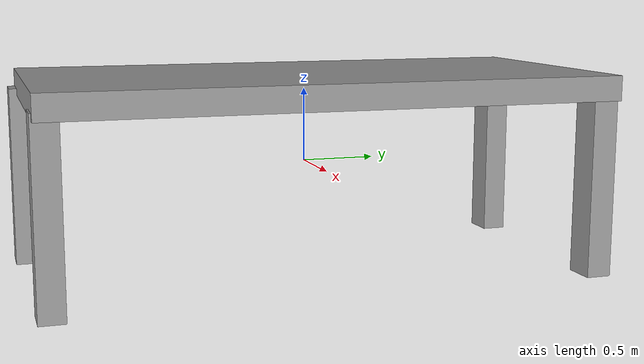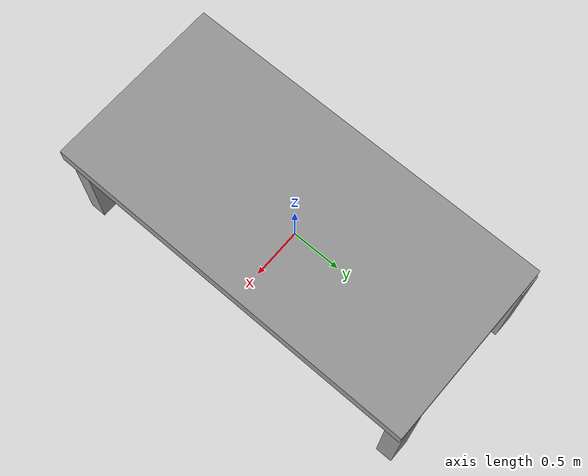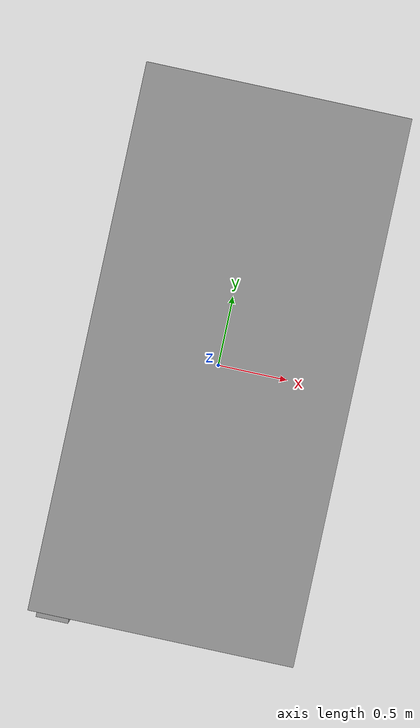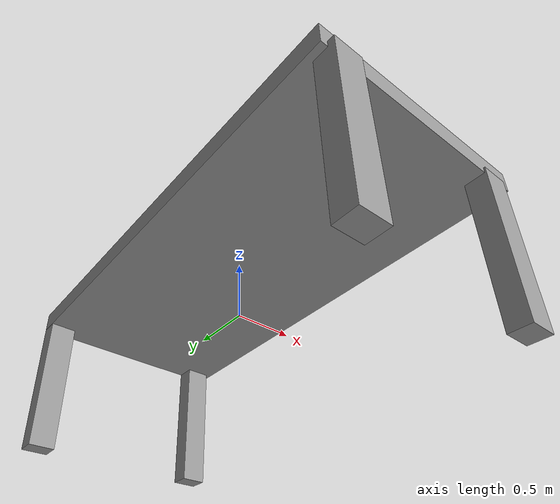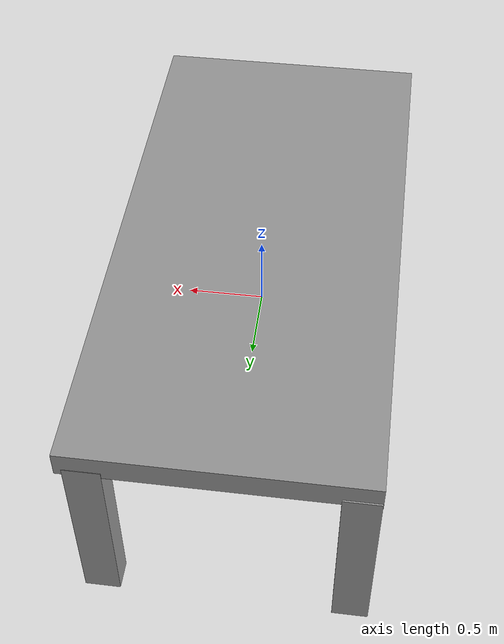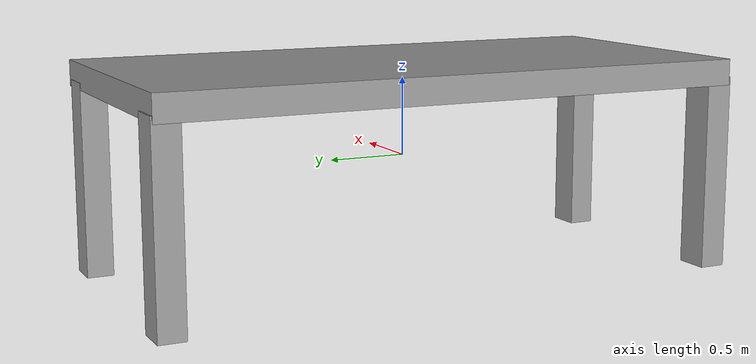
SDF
<?xml version='1.0'?>
<sdf version='1.7'>
  <model name='table'>
    <link name='link_1'>
      <inertial>
        <mass>1.15367</mass>
        <inertia>
          <ixx>1.37334</ixx>
          <ixy>0</ixy>
          <ixz>0</ixz>
          <iyy>0.323959</iyy>
          <iyz>0</iyz>
          <izz>1.69193</izz>
        </inertia>
        <pose>0 0 0 0 -0 0</pose>
      </inertial>
      <pose>0.010243 0.010053 0.528334 0 -0 0</pose>
      <visual name='visual'>
        <pose>0 0 0 0 -0 0</pose>
        <geometry>
          <box>
            <size>1.82805 3.77583 0.167115</size>
          </box>
        </geometry>
        <material>
          <lighting>1</lighting>
          <script>
            <uri>file://media/materials/scripts/gazebo.material</uri>
            <name>Gazebo/Grey</name>
          </script>
          <shader type='pixel'/>
          <emissive>0 0 0 1</emissive>
        </material>
        <transparency>0</transparency>
        <cast_shadows>1</cast_shadows>
      </visual>
      <collision name='collision'>
        <laser_retro>0</laser_retro>
        <max_contacts>10</max_contacts>
        <pose>0 0 0 0 -0 0</pose>
        <geometry>
          <box>
            <size>1.82805 3.77583 0.167115</size>
          </box>
        </geometry>
        <surface>
          <friction>
            <ode>
              <mu>1</mu>
              <mu2>1</mu2>
              <fdir1>0 0 0</fdir1>
              <slip1>0</slip1>
              <slip2>0</slip2>
            </ode>
            <torsional>
              <coefficient>1</coefficient>
              <patch_radius>0</patch_radius>
              <surface_radius>0</surface_radius>
              <use_patch_radius>1</use_patch_radius>
              <ode>
                <slip>0</slip>
              </ode>
            </torsional>
          </friction>
          <bounce>
            <restitution_coefficient>0</restitution_coefficient>
            <threshold>1e+06</threshold>
          </bounce>
          <contact>
            <collide_without_contact>0</collide_without_contact>
            <collide_without_contact_bitmask>1</collide_without_contact_bitmask>
            <collide_bitmask>1</collide_bitmask>
            <ode>
              <soft_cfm>0</soft_cfm>
              <soft_erp>0.2</soft_erp>
              <kp>1e+13</kp>
              <kd>1</kd>
              <max_vel>0.01</max_vel>
              <min_depth>0</min_depth>
            </ode>
            <bullet>
              <split_impulse>1</split_impulse>
              <split_impulse_penetration_threshold>-0.01</split_impulse_penetration_threshold>
              <soft_cfm>0</soft_cfm>
              <soft_erp>0.2</soft_erp>
              <kp>1e+13</kp>
              <kd>1</kd>
            </bullet>
          </contact>
        </surface>
      </collision>
    </link>
    <link name='link_2'>
      <inertial>
        <mass>0.0472353</mass>
        <inertia>
          <ixx>0.00620682</ixx>
          <ixy>0</ixy>
          <ixz>0</ixz>
          <iyy>0.00629048</iyy>
          <iyz>0</iyz>
          <izz>0.000310265</izz>
        </inertia>
        <pose>0 0 0 0 -0 0</pose>
      </inertial>
      <pose>0.74996 -1.80524 -0.132083 0 -0 0</pose>
      <visual name='visual'>
        <pose>0 0 0 0 -0 0</pose>
        <geometry>
          <box>
            <size>0.22369 0.169661 1.2442</size>
          </box>
        </geometry>
        <material>
          <lighting>1</lighting>
          <script>
            <uri>file://media/materials/scripts/gazebo.material</uri>
            <name>Gazebo/Grey</name>
          </script>
          <shader type='pixel'/>
          <emissive>0 0 0 1</emissive>
        </material>
        <transparency>0</transparency>
        <cast_shadows>1</cast_shadows>
      </visual>
      <collision name='collision'>
        <laser_retro>0</laser_retro>
        <max_contacts>10</max_contacts>
        <pose>0 0 0 0 -0 0</pose>
        <geometry>
          <box>
            <size>0.22369 0.169661 1.2442</size>
          </box>
        </geometry>
        <surface>
          <friction>
            <ode>
              <mu>1</mu>
              <mu2>1</mu2>
              <fdir1>0 0 0</fdir1>
              <slip1>0</slip1>
              <slip2>0</slip2>
            </ode>
            <torsional>
              <coefficient>1</coefficient>
              <patch_radius>0</patch_radius>
              <surface_radius>0</surface_radius>
              <use_patch_radius>1</use_patch_radius>
              <ode>
                <slip>0</slip>
              </ode>
            </torsional>
          </friction>
          <bounce>
            <restitution_coefficient>0</restitution_coefficient>
            <threshold>1e+06</threshold>
          </bounce>
          <contact>
            <collide_without_contact>0</collide_without_contact>
            <collide_without_contact_bitmask>1</collide_without_contact_bitmask>
            <collide_bitmask>1</collide_bitmask>
            <ode>
              <soft_cfm>0</soft_cfm>
              <soft_erp>0.2</soft_erp>
              <kp>1e+13</kp>
              <kd>1</kd>
              <max_vel>0.01</max_vel>
              <min_depth>0</min_depth>
            </ode>
            <bullet>
              <split_impulse>1</split_impulse>
              <split_impulse_penetration_threshold>-0.01</split_impulse_penetration_threshold>
              <soft_cfm>0</soft_cfm>
              <soft_erp>0.2</soft_erp>
              <kp>1e+13</kp>
              <kd>1</kd>
            </bullet>
          </contact>
        </surface>
      </collision>
    </link>
    <link name='link_2_clone'>
      <inertial>
        <mass>0.0472353</mass>
        <inertia>
          <ixx>0.00620682</ixx>
          <ixy>0</ixy>
          <ixz>0</ixz>
          <iyy>0.00629048</iyy>
          <iyz>0</iyz>
          <izz>0.000310265</izz>
        </inertia>
        <pose>0 0 0 0 -0 0</pose>
      </inertial>
      <pose>0.766833 1.81686 -0.132083 0 -0 0</pose>
      <visual name='visual'>
        <pose>0 0 0 0 -0 0</pose>
        <geometry>
          <box>
            <size>0.22369 0.169661 1.2442</size>
          </box>
        </geometry>
        <material>
          <lighting>1</lighting>
          <script>
            <uri>file://media/materials/scripts/gazebo.material</uri>
            <name>Gazebo/Grey</name>
          </script>
          <shader type='pixel'/>
          <emissive>0 0 0 1</emissive>
        </material>
        <transparency>0</transparency>
        <cast_shadows>1</cast_shadows>
      </visual>
      <collision name='collision'>
        <laser_retro>0</laser_retro>
        <max_contacts>10</max_contacts>
        <pose>0 0 0 0 -0 0</pose>
        <geometry>
          <box>
            <size>0.22369 0.169661 1.2442</size>
          </box>
        </geometry>
        <surface>
          <friction>
            <ode>
              <mu>1</mu>
              <mu2>1</mu2>
              <fdir1>0 0 0</fdir1>
              <slip1>0</slip1>
              <slip2>0</slip2>
            </ode>
            <torsional>
              <coefficient>1</coefficient>
              <patch_radius>0</patch_radius>
              <surface_radius>0</surface_radius>
              <use_patch_radius>1</use_patch_radius>
              <ode>
                <slip>0</slip>
              </ode>
            </torsional>
          </friction>
          <bounce>
            <restitution_coefficient>0</restitution_coefficient>
            <threshold>1e+06</threshold>
          </bounce>
          <contact>
            <collide_without_contact>0</collide_without_contact>
            <collide_without_contact_bitmask>1</collide_without_contact_bitmask>
            <collide_bitmask>1</collide_bitmask>
            <ode>
              <soft_cfm>0</soft_cfm>
              <soft_erp>0.2</soft_erp>
              <kp>1e+13</kp>
              <kd>1</kd>
              <max_vel>0.01</max_vel>
              <min_depth>0</min_depth>
            </ode>
            <bullet>
              <split_impulse>1</split_impulse>
              <split_impulse_penetration_threshold>-0.01</split_impulse_penetration_threshold>
              <soft_cfm>0</soft_cfm>
              <soft_erp>0.2</soft_erp>
              <kp>1e+13</kp>
              <kd>1</kd>
            </bullet>
          </contact>
        </surface>
      </collision>
    </link>
    <link name='link_2_clone_0'>
      <inertial>
        <mass>0.0472353</mass>
        <inertia>
          <ixx>0.00620682</ixx>
          <ixy>0</ixy>
          <ixz>0</ixz>
          <iyy>0.00629048</iyy>
          <iyz>0</iyz>
          <izz>0.000310265</izz>
        </inertia>
        <pose>0 0 0 0 -0 0</pose>
      </inertial>
      <pose>-0.737978 -1.84541 -0.132083 0 -0 0</pose>
      <visual name='visual'>
        <pose>0 0 0 0 -0 0</pose>
        <geometry>
          <box>
            <size>0.22369 0.169661 1.2442</size>
          </box>
        </geometry>
        <material>
          <lighting>1</lighting>
          <script>
            <uri>file://media/materials/scripts/gazebo.material</uri>
            <name>Gazebo/Grey</name>
          </script>
          <shader type='pixel'/>
          <emissive>0 0 0 1</emissive>
        </material>
        <transparency>0</transparency>
        <cast_shadows>1</cast_shadows>
      </visual>
      <collision name='collision'>
        <laser_retro>0</laser_retro>
        <max_contacts>10</max_contacts>
        <pose>0 0 0 0 -0 0</pose>
        <geometry>
          <box>
            <size>0.22369 0.169661 1.2442</size>
          </box>
        </geometry>
        <surface>
          <friction>
            <ode>
              <mu>1</mu>
              <mu2>1</mu2>
              <fdir1>0 0 0</fdir1>
              <slip1>0</slip1>
              <slip2>0</slip2>
            </ode>
            <torsional>
              <coefficient>1</coefficient>
              <patch_radius>0</patch_radius>
              <surface_radius>0</surface_radius>
              <use_patch_radius>1</use_patch_radius>
              <ode>
                <slip>0</slip>
              </ode>
            </torsional>
          </friction>
          <bounce>
            <restitution_coefficient>0</restitution_coefficient>
            <threshold>1e+06</threshold>
          </bounce>
          <contact>
            <collide_without_contact>0</collide_without_contact>
            <collide_without_contact_bitmask>1</collide_without_contact_bitmask>
            <collide_bitmask>1</collide_bitmask>
            <ode>
              <soft_cfm>0</soft_cfm>
              <soft_erp>0.2</soft_erp>
              <kp>1e+13</kp>
              <kd>1</kd>
              <max_vel>0.01</max_vel>
              <min_depth>0</min_depth>
            </ode>
            <bullet>
              <split_impulse>1</split_impulse>
              <split_impulse_penetration_threshold>-0.01</split_impulse_penetration_threshold>
              <soft_cfm>0</soft_cfm>
              <soft_erp>0.2</soft_erp>
              <kp>1e+13</kp>
              <kd>1</kd>
            </bullet>
          </contact>
        </surface>
      </collision>
    </link>
    <link name='link_2_clone_1'>
      <inertial>
        <mass>0.0472353</mass>
        <inertia>
          <ixx>0.00620682</ixx>
          <ixy>0</ixy>
          <ixz>0</ixz>
          <iyy>0.00629048</iyy>
          <iyz>0</iyz>
          <izz>0.000310265</izz>
        </inertia>
        <pose>0 0 0 0 -0 0</pose>
      </inertial>
      <pose>-0.789062 1.82375 -0.132083 0 -0 0</pose>
      <visual name='visual'>
        <pose>0 0 0 0 -0 0</pose>
        <geometry>
          <box>
            <size>0.22369 0.169661 1.2442</size>
          </box>
        </geometry>
        <material>
          <lighting>1</lighting>
          <script>
            <uri>file://media/materials/scripts/gazebo.material</uri>
            <name>Gazebo/Grey</name>
          </script>
          <shader type='pixel'/>
          <emissive>0 0 0 1</emissive>
        </material>
        <transparency>0</transparency>
        <cast_shadows>1</cast_shadows>
      </visual>
      <collision name='collision'>
        <laser_retro>0</laser_retro>
        <max_contacts>10</max_contacts>
        <pose>0 0 0 0 -0 0</pose>
        <geometry>
          <box>
            <size>0.22369 0.169661 1.2442</size>
          </box>
        </geometry>
        <surface>
          <friction>
            <ode>
              <mu>1</mu>
              <mu2>1</mu2>
              <fdir1>0 0 0</fdir1>
              <slip1>0</slip1>
              <slip2>0</slip2>
            </ode>
            <torsional>
              <coefficient>1</coefficient>
              <patch_radius>0</patch_radius>
              <surface_radius>0</surface_radius>
              <use_patch_radius>1</use_patch_radius>
              <ode>
                <slip>0</slip>
              </ode>
            </torsional>
          </friction>
          <bounce>
            <restitution_coefficient>0</restitution_coefficient>
            <threshold>1e+06</threshold>
          </bounce>
          <contact>
            <collide_without_contact>0</collide_without_contact>
            <collide_without_contact_bitmask>1</collide_without_contact_bitmask>
            <collide_bitmask>1</collide_bitmask>
            <ode>
              <soft_cfm>0</soft_cfm>
              <soft_erp>0.2</soft_erp>
              <kp>1e+13</kp>
              <kd>1</kd>
              <max_vel>0.01</max_vel>
              <min_depth>0</min_depth>
            </ode>
            <bullet>
              <split_impulse>1</split_impulse>
              <split_impulse_penetration_threshold>-0.01</split_impulse_penetration_threshold>
              <soft_cfm>0</soft_cfm>
              <soft_erp>0.2</soft_erp>
              <kp>1e+13</kp>
              <kd>1</kd>
            </bullet>
          </contact>
        </surface>
      </collision>
    </link>
    <joint name='link_1_JOINT_0' type='fixed'>
      <parent>link_1</parent>
      <child>link_2</child>
      <pose>0 0 0 0 -0 0</pose>
      <physics>
        <ode>
          <limit>
            <cfm>0</cfm>
            <erp>0.2</erp>
          </limit>
          <suspension>
            <cfm>0</cfm>
            <erp>0.2</erp>
          </suspension>
        </ode>
      </physics>
    </joint>
    <joint name='link_1_JOINT_1' type='fixed'>
      <parent>link_1</parent>
      <child>link_2_clone_0</child>
      <pose>0 0 0 0 -0 0</pose>
      <physics>
        <ode>
          <limit>
            <cfm>0</cfm>
            <erp>0.2</erp>
          </limit>
          <suspension>
            <cfm>0</cfm>
            <erp>0.2</erp>
          </suspension>
        </ode>
      </physics>
    </joint>
    <joint name='link_1_JOINT_2' type='fixed'>
      <parent>link_1</parent>
      <child>link_2_clone</child>
      <pose>0 0 0 0 -0 0</pose>
      <physics>
        <ode>
          <limit>
            <cfm>0</cfm>
            <erp>0.2</erp>
          </limit>
          <suspension>
            <cfm>0</cfm>
            <erp>0.2</erp>
          </suspension>
        </ode>
      </physics>
    </joint>
    <joint name='link_1_JOINT_3' type='fixed'>
      <parent>link_1</parent>
      <child>link_2_clone_1</child>
      <pose>0 0 0 0 -0 0</pose>
      <physics>
        <ode>
          <limit>
            <cfm>0</cfm>
            <erp>0.2</erp>
          </limit>
          <suspension>
            <cfm>0</cfm>
            <erp>0.2</erp>
          </suspension>
        </ode>
      </physics>
    </joint>
    <static>0</static>
    <allow_auto_disable>1</allow_auto_disable>
  </model>
</sdf>
